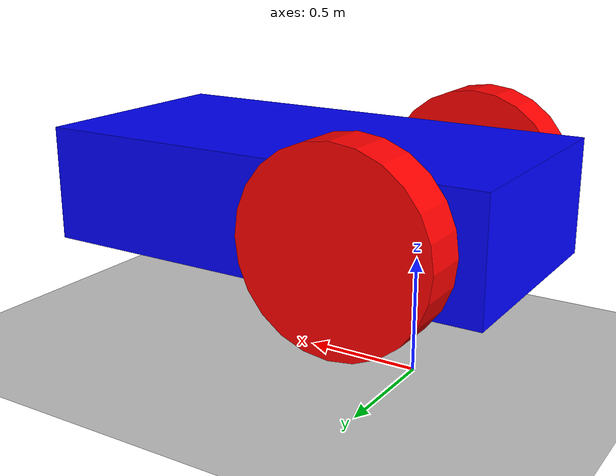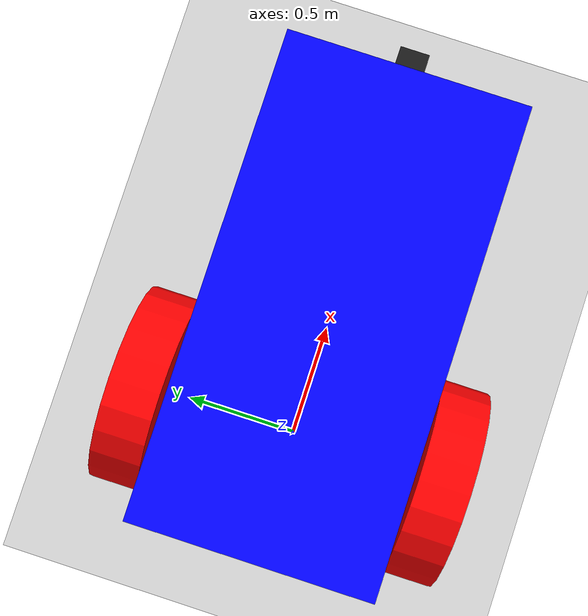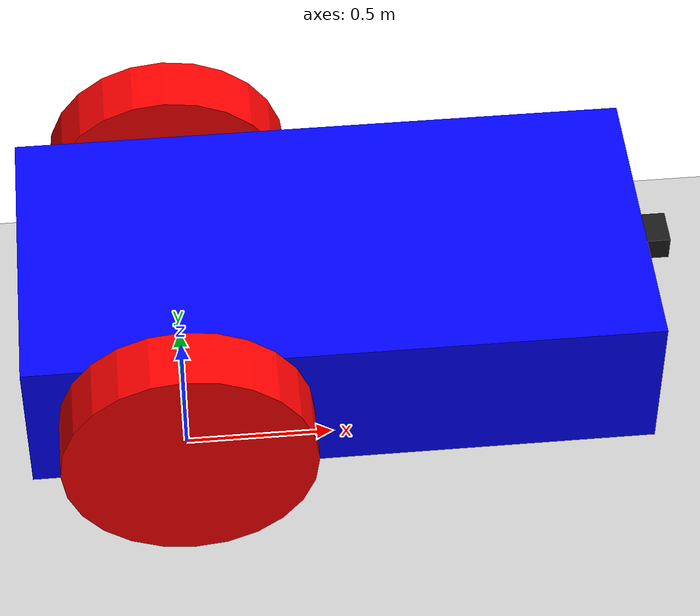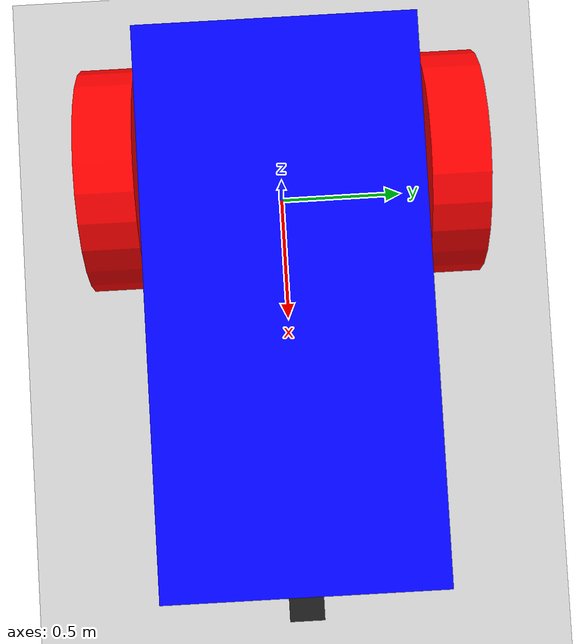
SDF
<?xml version="1.0" ?>
<sdf version='1.10'>
  <world name='empty'>
    <physics name='1ms' type='ignored'>
      <max_step_size>0.0050000000000000001</max_step_size>
      <real_time_factor>1</real_time_factor>
      <real_time_update_rate>500</real_time_update_rate>
    </physics>
    <plugin name='gz::sim::systems::Physics' filename='gz-sim-physics-system'/>
    <plugin name='gz::sim::systems::UserCommands' filename='gz-sim-user-commands-system'/>
    <plugin name='gz::sim::systems::SceneBroadcaster' filename='gz-sim-scene-broadcaster-system'/>
    <plugin name='gz::sim::systems::Contact' filename='gz-sim-contact-system'/>
    <plugin name="gz::sim::systems::Sensors" filename="gz-sim-sensors-system">
      <render_engine>ogre2</render_engine>
    </plugin>
    <gravity>0 0 -9.8000000000000007</gravity>
    <magnetic_field>5.5644999999999998e-06 2.2875799999999999e-05 -4.2388400000000002e-05</magnetic_field>
    <atmosphere type='adiabatic'/>
    <scene>
      <ambient>0.400000006 0.400000006 0.400000006 1</ambient>
      <background>0.699999988 0.699999988 0.699999988 1</background>
      <shadows>true</shadows>
    </scene>
    <gui>
      <camera name='user_camera'>
        <pose>0 0 10 0 -1.5700000000004057 0</pose>
      </camera>
    </gui>

    <model name='ground_plan'>
      <static>true</static>
      <link name='link'>
        <collision name='collision'>
          <geometry>
            <plane>
              <normal>0 0 1</normal>
              <size>100 100</size>
            </plane>
          </geometry>
          <surface>
            <friction>
              <ode/>
            </friction>
            <bounce/>
            <contact/>
          </surface>
        </collision>
        <visual name='visual'>
          <geometry>
            <plane>
              <normal>0 0 1</normal>
              <size>100 100</size>
            </plane>
          </geometry>
          <material>
            <ambient>0.800000012 0.800000012 0.800000012 1</ambient>
            <diffuse>0.800000012 0.800000012 0.800000012 1</diffuse>
            <specular>0.800000012 0.800000012 0.800000012 1</specular>
          </material>
        </visual>
        <pose>0 0 0 0 0 0</pose>
        <inertial>
          <pose>0 0 0 0 0 0</pose>
          <mass>1</mass>
          <inertia>
            <ixx>1</ixx>
            <ixy>0</ixy>
            <ixz>0</ixz>
            <iyy>1</iyy>
            <iyz>0</iyz>
            <izz>1</izz>
          </inertia>
        </inertial>
        <enable_wind>false</enable_wind>
      </link>
      <pose>0 0 0 0 0 0</pose>
      <self_collide>false</self_collide>
    </model>

    <include>
      <uri>model://vehicle_test</uri>
      <name>vehicle_test</name>
      <pose>0 0 0.32 0 0 0</pose>
    </include>

    <light name='sun' type='directional'>
      <pose>0 0 10 0 0 0</pose>
      <cast_shadows>true</cast_shadows>
      <intensity>1</intensity>
      <direction>-0.5 0.10000000000000001 -0.90000000000000002</direction>
      <diffuse>0.800000012 0.800000012 0.800000012 1</diffuse>
      <specular>0.200000003 0.200000003 0.200000003 1</specular>
      <attenuation>
        <range>1000</range>
        <linear>0.0099999997764825821</linear>
        <constant>0.89999997615814209</constant>
        <quadratic>0.0010000000474974513</quadratic>
      </attenuation>
      <spot>
        <inner_angle>0</inner_angle>
        <outer_angle>0</outer_angle>
        <falloff>0</falloff>
      </spot>
    </light>
  </world>
</sdf>

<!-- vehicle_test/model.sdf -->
<sdf version='1.10'>
  <model name='vehicle_test'>
    <link name='chassis'>
        <pose relative_to='__model__'>0.5 0 0.4 0 0 0</pose>
        <inertial> <!--inertial properties of the link mass, inertia matix-->
            <mass>1.14395</mass>
            <inertia>
                <ixx>0.095329</ixx>
                <ixy>0</ixy>
                <ixz>0</ixz>
                <iyy>0.381317</iyy>
                <iyz>0</iyz>
                <izz>0.476646</izz>
            </inertia>
        </inertial>
        <visual name='visual'>
            <geometry>
                <box>
                    <size>2.0 1.0 0.5</size>
                </box>
            </geometry>
            <!--let's add color to our link-->
            <material>
                <ambient>0.0 0.0 1.0 1</ambient>
                <diffuse>0.0 0.0 1.0 1</diffuse>
                <specular>0.0 0.0 1.0 1</specular>
            </material>
        </visual>
        <collision name='collision'>
            <geometry>
                <box>
                    <size>2.0 1.0 0.5</size>
                </box>
            </geometry>
        </collision>
    </link>

    <link name='left_wheel'>
        <pose relative_to="chassis">-0.5 0.6 0 -1.5707 0 0</pose>
        <inertial>
            <mass>1</mass>
            <inertia>
                <ixx>0.043333</ixx>
                <ixy>0</ixy>
                <ixz>0</ixz>
                <iyy>0.043333</iyy>
                <iyz>0</iyz>
                <izz>0.08</izz>
            </inertia>
        </inertial>
        <visual name='visual'>
            <geometry>
                <cylinder>
                    <radius>0.4</radius>
                    <length>0.2</length>
                </cylinder>
            </geometry>
            <material>
                <ambient>1.0 0.0 0.0 1</ambient>
                <diffuse>1.0 0.0 0.0 1</diffuse>
                <specular>1.0 0.0 0.0 1</specular>
            </material>
        </visual>
        <collision name='collision'>
            <geometry>
                <cylinder>
                    <radius>0.4</radius>
                    <length>0.2</length>
                </cylinder>
            </geometry>
        </collision>
    </link>

<!--The same as left wheel but with different position-->
    <link name='right_wheel'>
        <pose relative_to="chassis">-0.5 -0.6 0 -1.5707 0 0</pose> <!--angles are in radian-->
        <inertial>
            <mass>1</mass>
            <inertia>
                <ixx>0.043333</ixx>
                <ixy>0</ixy>
                <ixz>0</ixz>
                <iyy>0.043333</iyy>
                <iyz>0</iyz>
                <izz>0.08</izz>
            </inertia>
        </inertial>
        <visual name='visual'>
            <geometry>
                <cylinder>
                    <radius>0.4</radius>
                    <length>0.2</length>
                </cylinder>
            </geometry>
            <material>
                <ambient>1.0 0.0 0.0 1</ambient>
                <diffuse>1.0 0.0 0.0 1</diffuse>
                <specular>1.0 0.0 0.0 1</specular>
            </material>
        </visual>
        <collision name='collision'>
            <geometry>
                <cylinder>
                    <radius>0.4</radius>
                    <length>0.2</length>
                </cylinder>
            </geometry>
        </collision>
    </link>

    <frame name="caster_frame" attached_to='chassis'>
        <pose>0.8 0 -0.2 0 0 0</pose>
    </frame>

        <!--caster wheel-->
    <link name='caster'>
        <pose relative_to='caster_frame'/>
        <inertial>
            <mass>1</mass>
            <inertia>
                <ixx>0.016</ixx>
                <ixy>0</ixy>
                <ixz>0</ixz>
                <iyy>0.016</iyy>
                <iyz>0</iyz>
                <izz>0.016</izz>
            </inertia>
        </inertial>
        <visual name='visual'>
            <geometry>
                <sphere>
                    <radius>0.2</radius>
                </sphere>
            </geometry>
            <material>
                <ambient>0.0 1 0.0 1</ambient>
                <diffuse>0.0 1 0.0 1</diffuse>
                <specular>0.0 1 0.0 1</specular>
            </material>
        </visual>
        <collision name='collision'>
            <geometry>
                <sphere>
                    <radius>0.2</radius>
                </sphere>
            </geometry>
        </collision>
    </link>

    <link name="camera_link">
        <pose relative_to="chassis">1.05 0 0.15 0 0 0</pose>

        <inertial>
            <mass>0.05</mass>
            <inertia>
                <ixx>0.0001</ixx>
                <ixy>0</ixy>
                <ixz>0</ixz>
                <iyy>0.0001</iyy>
                <iyz>0</iyz>
                <izz>0.0001</izz>
            </inertia>
        </inertial>
        <visual name="camera_visual">
            <geometry>
                <box>
                    <size>0.08 0.12 0.08</size>
                </box>
            </geometry>
            <material>
                <ambient>0.1 0.1 0.1 1</ambient>
                <diffuse>0.1 0.1 0.1 1</diffuse>
                <specular>0.2 0.2 0.2 1</specular>
            </material>
        </visual>
        <collision name="camera_collision">
            <geometry>
                <box>
                    <size>0.08 0.12 0.08</size>
                </box>
            </geometry>
        </collision>
        <sensor name="front_camera" type="camera">
            <pose>0.04 0 0 0 0 0</pose>
            <always_on>true</always_on>
            <update_rate>30</update_rate>
            <visualize>true</visualize>
            <camera>
                <horizontal_fov>1.0472</horizontal_fov>
                <image>
                    <width>640</width>
                    <height>480</height>
                    <format>R8G8B8</format>
                </image>
                <clip>
                    <near>0.05</near>
                    <far>100.0</far>
                </clip>
            </camera>
        </sensor>
    </link>

    <joint name='left_wheel_joint' type='revolute'>
        <pose relative_to='left_wheel'/>
        <parent>chassis</parent>
        <child>left_wheel</child>
        <axis>
            <xyz expressed_in='__model__'>0 1 0</xyz> <!--can be defined as any frame or even arbitrary frames-->
            <limit>
                <lower>-1.79769e+308</lower>    <!--negative infinity-->
                <upper>1.79769e+308</upper>     <!--positive infinity-->
            </limit>
        </axis>
    </joint>

    <joint name='right_wheel_joint' type='revolute'>
        <pose relative_to='right_wheel'/>
        <parent>chassis</parent>
        <child>right_wheel</child>
        <axis>
            <xyz expressed_in='__model__'>0 1 0</xyz>
            <limit>
                <lower>-1.79769e+308</lower>    <!--negative infinity-->
                <upper>1.79769e+308</upper>     <!--positive infinity-->
            </limit>
        </axis>
    </joint>

    <joint name='caster_wheel' type='ball'>
        <parent>chassis</parent>
        <child>caster</child>
    </joint>

    <joint name="camera_joint" type="fixed">
        <parent>chassis</parent>
        <child>camera_link</child>
    </joint>

    <plugin filename="gz-sim-diff-drive-system" name="gz::sim::systems::DiffDrive">
        <left_joint>left_wheel_joint</left_joint>
        <right_joint>right_wheel_joint</right_joint>
        <wheel_separation>1.25</wheel_separation>
        <wheel_radius>0.3</wheel_radius>
        <odom_publish_frequency>1</odom_publish_frequency>
        <max_linear_acceleration>1</max_linear_acceleration>
        <min_linear_acceleration>-1</min_linear_acceleration>
        <max_angular_acceleration>2</max_angular_acceleration>
        <min_angular_acceleration>-2</min_angular_acceleration>
        <max_linear_velocity>0.5</max_linear_velocity>
        <min_linear_velocity>-0.5</min_linear_velocity>
        <max_angular_velocity>1</max_angular_velocity>
        <min_angular_velocity>-1</min_angular_velocity>
    </plugin>
    <plugin filename="gz-sim-joint-state-publisher-system" name="gz::sim::systems::JointStatePublisher">
    </plugin>
  </model>
</sdf>
